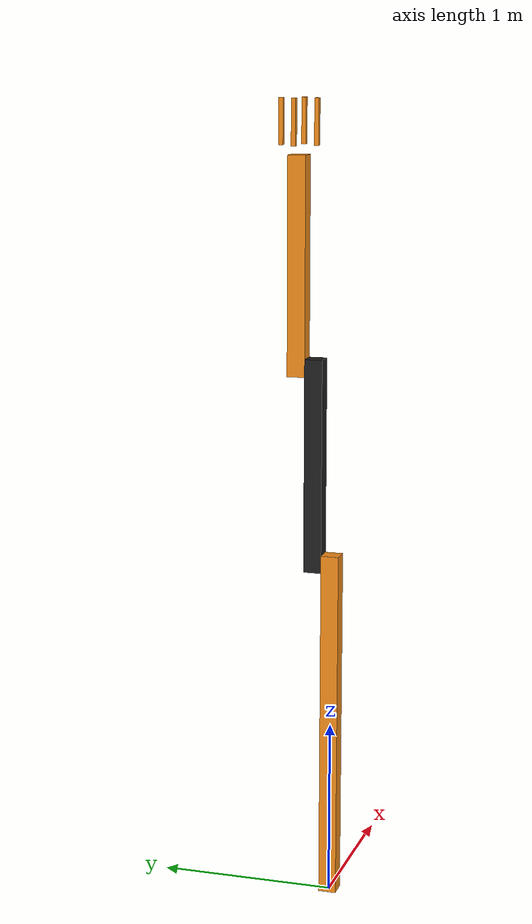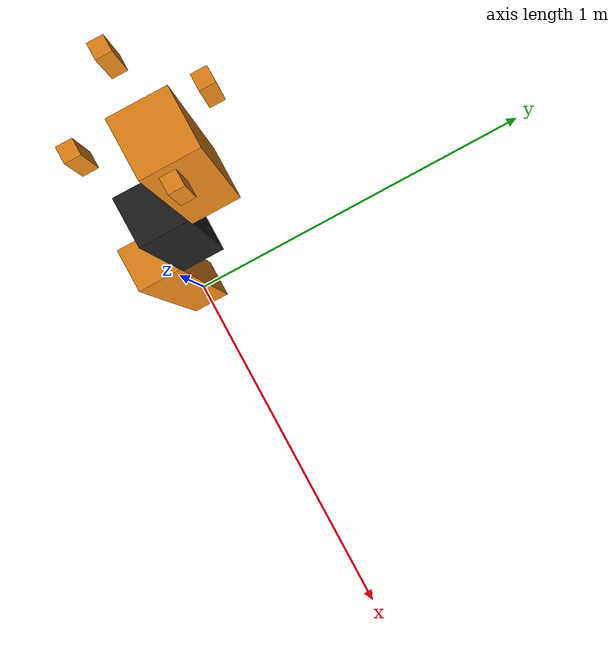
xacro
<?xml version="1.0"?>
<!-- Revolute-Revolute Manipulator -->
<robot name="robo_arm"
	xmlns:xacro="http://www.ros.org/wiki/xacro">
	<!-- Constants for robot dimensions -->
	<xacro:property name="PI" value="3.1415926535897931"/>
	<!-- arbitrary value for mass -->
	<xacro:property name="mass" value="1" />
	<!-- Square dimensions (widthxwidth) of beams -->
	<xacro:property name="width" value="0.1" />
	<!-- Link 1 -->
	<xacro:property name="height1" value="2" />
	<!-- Link 2 -->
	<xacro:property name="height2" value="1.2" />
	<!-- Link 3 -->
	<xacro:property name="height3" value="1.2" />
	<!-- Finger -->
	<xacro:property name="height4" value="1" />
	<!-- Size of square 'camera' box -->
	<xacro:property name="camera_link" value="0.05" />
	<!-- Space btw top of beam and the each joint -->
	<xacro:property name="axel_offset" value="0.05" />
	<!-- Import all Gazebo-customization elements, including Gazebo colors -->
	<xacro:include filename="$(find robo_arm_description)/urdf/robo_arm.gazebo" />
	<!-- Import Rviz colors -->
	<xacro:include filename="$(find robo_arm_description)/urdf/materials.xacro" />
	<!-- Used for fixing robot to Gazebo 'base_link' -->
	<link name="world"/>
	<joint name="joint_body" type="continuous">
		<parent link="world"/>
		<child link="link1"/>
		<origin xyz="0 0 0" rpy="0.0 0.0 0.0"/>
		<axis xyz="0 0 1"/>
		<dynamics damping="0.9"/>
	</joint>
	<!-- Base Link -->
	<link name="link1">
		<collision>
			<origin xyz="0 0 ${height1/2}" rpy="0 0 0"/>
			<geometry>
				<box size="${width} ${width} ${height1}"/>
			</geometry>
		</collision>
		<visual>
			<origin xyz="0 0 ${height1/2}" rpy="0 0 0"/>
			<geometry>
				<box size="${width} ${width} ${height1}"/>
			</geometry>
			<material name="orange"/>
		</visual>
		<inertial>
			<origin xyz="0 0 ${height1/2}" rpy="0 0 0"/>
			<mass value="0.01"/>
			<inertia
	  ixx="${mass / 12.0 * (width*width + height1*height1)}" ixy="0.0" ixz="0.0"
	  iyy="${mass / 12.0 * (height1*height1 + width*width)}" iyz="0.0"
	  izz="${mass / 12.0 * (width*width + width*width)}"/>
		</inertial>
	</link>
	<joint name="joint_shoulder" type="continuous">
		<parent link="link1"/>
		<child link="link2"/>
		<origin xyz="0 ${width} ${height1 - axel_offset}" rpy="0 0 0"/>
		<axis xyz="0 1 0"/>
		<dynamics damping="0.9"/>
	</joint>
	<!-- Middle Link -->
	<link name="link2">
		<collision>
			<origin xyz="0 0 ${height2/2 - axel_offset}" rpy="0 0 0"/>
			<geometry>
				<box size="${width} ${width} ${height2}"/>
			</geometry>
		</collision>
		<visual>
			<origin xyz="0 0 ${height2/2 - axel_offset}" rpy="0 0 0"/>
			<geometry>
				<box size="${width} ${width} ${height2}"/>
			</geometry>
			<material name="black"/>
		</visual>
		<inertial>
			<origin xyz="0 0 ${height2/2 - axel_offset}" rpy="0 0 0"/>
			<mass value="0.01"/>
			<inertia
	  ixx="${mass / 12.0 * (width*width + height2*height2)}" ixy="0.0" ixz="0.0"
	  iyy="${mass / 12.0 * (height2*height2 + width*width)}" iyz="0.0"
	  izz="${mass / 12.0 * (width*width + width*width)}"/>
		</inertial>
	</link>
	<joint name="joint_elbow" type="continuous">
		<parent link="link2"/>
		<child link="link3"/>
		<origin xyz="0 ${width} ${height2 - axel_offset*2}" rpy="0 0 0"/>
		<axis xyz="0 1 0"/>
		<dynamics damping="0.9"/>
	</joint>
	<!-- Top Link -->
	<link name="link3">
		<collision>
			<origin xyz="0 0 ${height3/2 - axel_offset}" rpy="0 0 0"/>
			<geometry>
				<box size="${width} ${width} ${height3}"/>
			</geometry>
		</collision>
		<visual>
			<origin xyz="0 0 ${height3/2 - axel_offset}" rpy="0 0 0"/>
			<geometry>
				<box size="${width} ${width} ${height3}"/>
			</geometry>
			<material name="orange"/>
		</visual>
		<inertial>
			<origin xyz="0 0 ${height3/2 - axel_offset}" rpy="0 0 0"/>
			<mass value="0.01"/>
			<inertia
	  ixx="${mass / 12.0 * (width*width + height3*height3)}" ixy="0.0" ixz="0.0"
	  iyy="${mass / 12.0 * (height3*height3 + width*width)}" iyz="0.0"
	  izz="${mass / 12.0 * (width*width + width*width)}"/>
		</inertial>
	</link>
	<!-- finger 1-->
	<link name="finger1">
		<collision>
			<origin xyz="0 0 ${height4/8}" rpy="0 0 0"/>
			<geometry>
				<box size="${width/4} ${width/4} ${height4/4}"/>
			</geometry>
			<material name="orange"/>
		</collision>
		<visual>
			<origin xyz="0 0 ${height4/8}" rpy="0 0 0"/>
			<geometry>
				<box size="${width/4} ${width/4} ${height4/4}"/>
			</geometry>
			<material name="orange"/>
		</visual>
		<inertial>
			<origin xyz="0 0 ${height4/8}" rpy="0 0 0"/>
			<mass value="0.01"/>
			<inertia
	  ixx="${mass / 12.0 * (width*width + height3*height3)}" ixy="0.0" ixz="0.0"
	  iyy="${mass / 12.0 * (height3*height3 + width*width)}" iyz="0.0"
	  izz="${mass / 12.0 * (width*width + width*width)}"/>
		</inertial>
	</link>
	<joint name="joint_finger1" type="continuous">
		<parent link="link3"/>
		<child link="finger1"/>
		<origin xyz="0 ${-width} ${height2}" rpy="0 0 0"/>
		<axis xyz="1 0 0"/>
		<dynamics damping="0.9"/>
	</joint>
	<!-- finger 2-->
	<link name="finger2">
		<collision>
			<origin xyz="0 0 ${height4/8}" rpy="0 0 0"/>
			<geometry>
				<box size="${width/4} ${width/4} ${height4/4}"/>
			</geometry>
			<material name="orange"/>
		</collision>
		<visual>
			<origin xyz="0 0 ${height4/8}" rpy="0 0 0"/>
			<geometry>
				<box size="${width/4} ${width/4} ${height4/4}"/>
			</geometry>
			<material name="orange"/>
		</visual>
		<inertial>
			<origin xyz="0 0 ${height4/8}" rpy="0 0 0"/>
			<mass value="0.01"/>
			<inertia
	  ixx="${mass / 12.0 * (width*width + height3*height3)}" ixy="0.0" ixz="0.0"
	  iyy="${mass / 12.0 * (height3*height3 + width*width)}" iyz="0.0"
	  izz="${mass / 12.0 * (width*width + width*width)}"/>
		</inertial>
	</link>
	<joint name="joint_finger2" type="continuous">
		<parent link="link3"/>
		<child link="finger2"/>
		<origin xyz="0 ${width} ${height2}" rpy="0 0 0"/>
		<axis xyz="1 0 0"/>
		<dynamics damping="0.9"/>
	</joint>
	<!-- finger 3-->
	<link name="finger3">
		<collision>
			<origin xyz="0 0 ${height4/8}" rpy="0 0 0"/>
			<geometry>
				<box size="${width/4} ${width/4} ${height4/4}"/>
			</geometry>
			<material name="orange"/>
		</collision>
		<visual>
			<origin xyz="0 0 ${height4/8}" rpy="0 0 0"/>
			<geometry>
				<box size="${width/4} ${width/4} ${height4/4}"/>
			</geometry>
			<material name="orange"/>
		</visual>
		<inertial>
			<origin xyz="0 0 ${height4/8}" rpy="0 0 0"/>
			<mass value="0.01"/>
			<inertia
	  ixx="${mass / 12.0 * (width*width + height3*height3)}" ixy="0.0" ixz="0.0"
	  iyy="${mass / 12.0 * (height3*height3 + width*width)}" iyz="0.0"
	  izz="${mass / 12.0 * (width*width + width*width)}"/>
		</inertial>
	</link>
	<joint name="joint_finger3" type="continuous">
		<parent link="link3"/>
		<child link="finger3"/>
		<origin xyz="${width} 0 ${height2}" rpy="0 0 0"/>
		<axis xyz="0 1 0"/>
		<dynamics damping="0.9"/>
	</joint>
	<!-- finger 4-->
	<link name="finger4">
		<collision>
			<origin xyz="0 0 ${height4/8}" rpy="0 0 0"/>
			<geometry>
				<box size="${width/4} ${width/4} ${height4/4}"/>
			</geometry>
			<material name="orange"/>
		</collision>
		<visual>
			<origin xyz="0 0 ${height4/8}" rpy="0 0 0"/>
			<geometry>
				<box size="${width/4} ${width/4} ${height4/4}"/>
			</geometry>
			<material name="orange"/>
		</visual>
		<inertial>
			<origin xyz="0 0 ${height4/8}" rpy="0 0 0"/>
			<mass value="0.01"/>
			<inertia
	  ixx="${mass / 12.0 * (width*width + height3*height3)}" ixy="0.0" ixz="0.0"
	  iyy="${mass / 12.0 * (height3*height3 + width*width)}" iyz="0.0"
	  izz="${mass / 12.0 * (width*width + width*width)}"/>
		</inertial>
	</link>
	<joint name="joint_finger4" type="continuous">
		<parent link="link3"/>
		<child link="finger4"/>
		<origin xyz="${-width} 0 ${height2}" rpy="0 0 0"/>
		<axis xyz="0 1 0"/>
		<dynamics damping="0.9"/>
	</joint>
	<joint name="camera_joint" type="fixed">
		<axis xyz="0 1 0" />
		<origin xyz="0 0 ${height3 + camera_link*2}" rpy="0 ${-pi/2} 0"/>
		<parent link="link3"/>
		<child link="camera_link"/>
	</joint>
	<!-- Camera -->
	<link name="camera_link">
	</link>
	<!-- generate an optical frame http://www.ros.org/reps/rep-0103.html#suffix-frames
      so that ros and opencv can operate on the camera frame correctly -->
	<joint name="camera_optical_joint" type="fixed">
		<!-- these values have to be these values otherwise the gazebo camera image
        won't be aligned properly with the frame it is supposedly originating from -->
		<origin xyz="0 0 0" rpy="0 0 0"/>
		<parent link="camera_link"/>
		<child link="camera_link_optical"/>
	</joint>
	<link name="camera_link_optical"></link>
	<transmission name="tran1">
		<type>transmission_interface/SimpleTransmission</type>
		<joint name="joint_body">
			<hardwareInterface>hardware_interface/EffortJointInterface</hardwareInterface>
		</joint>
		<actuator name="motor1">
			<hardwareInterface>hardware_interface/EffortJointInterface</hardwareInterface>
			<mechanicalReduction>1</mechanicalReduction>
		</actuator>
	</transmission>
	<transmission name="tran2">
		<type>transmission_interface/SimpleTransmission</type>
		<joint name="joint_shoulder">
			<hardwareInterface>hardware_interface/EffortJointInterface</hardwareInterface>
		</joint>
		<actuator name="motor2">
			<hardwareInterface>hardware_interface/EffortJointInterface</hardwareInterface>
			<mechanicalReduction>1</mechanicalReduction>
		</actuator>
	</transmission>
	<transmission name="tran3">
		<type>transmission_interface/SimpleTransmission</type>
		<joint name="joint_elbow">
			<hardwareInterface>hardware_interface/EffortJointInterface</hardwareInterface>
		</joint>
		<actuator name="motor3">
			<hardwareInterface>hardware_interface/EffortJointInterface</hardwareInterface>
			<mechanicalReduction>1</mechanicalReduction>
		</actuator>
	</transmission>
	<transmission name="tran4">
		<type>transmission_interface/SimpleTransmission</type>
		<joint name="joint_finger1">
			<hardwareInterface>hardware_interface/EffortJointInterface</hardwareInterface>
		</joint>
		<actuator name="motor4">
			<hardwareInterface>hardware_interface/EffortJointInterface</hardwareInterface>
			<mechanicalReduction>1</mechanicalReduction>
		</actuator>
	</transmission>
	<transmission name="tran5">
		<type>transmission_interface/SimpleTransmission</type>
		<joint name="joint_finger2">
			<hardwareInterface>hardware_interface/EffortJointInterface</hardwareInterface>
		</joint>
		<actuator name="motor5">
			<hardwareInterface>hardware_interface/EffortJointInterface</hardwareInterface>
			<mechanicalReduction>1</mechanicalReduction>
		</actuator>
	</transmission>
	<transmission name="tran6">
		<type>transmission_interface/SimpleTransmission</type>
		<joint name="joint_finger3">
			<hardwareInterface>hardware_interface/EffortJointInterface</hardwareInterface>
		</joint>
		<actuator name="motor6">
			<hardwareInterface>hardware_interface/EffortJointInterface</hardwareInterface>
			<mechanicalReduction>1</mechanicalReduction>
		</actuator>
	</transmission>
	<transmission name="tran7">
		<type>transmission_interface/SimpleTransmission</type>
		<joint name="joint_finger4">
			<hardwareInterface>hardware_interface/EffortJointInterface</hardwareInterface>
		</joint>
		<actuator name="motor7">
			<hardwareInterface>hardware_interface/EffortJointInterface</hardwareInterface>
			<mechanicalReduction>1</mechanicalReduction>
		</actuator>
	</transmission>

</robot>
